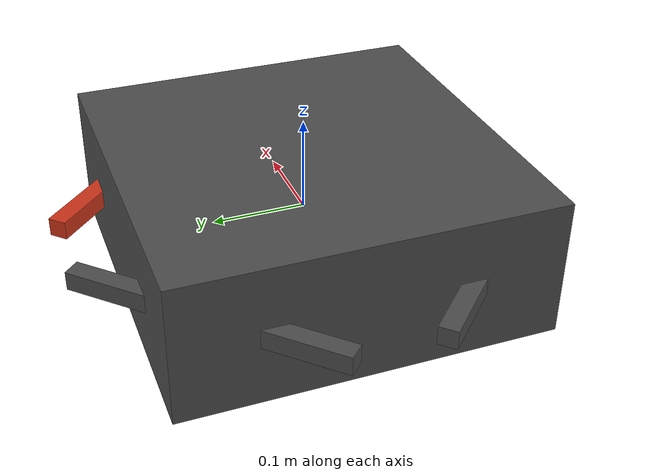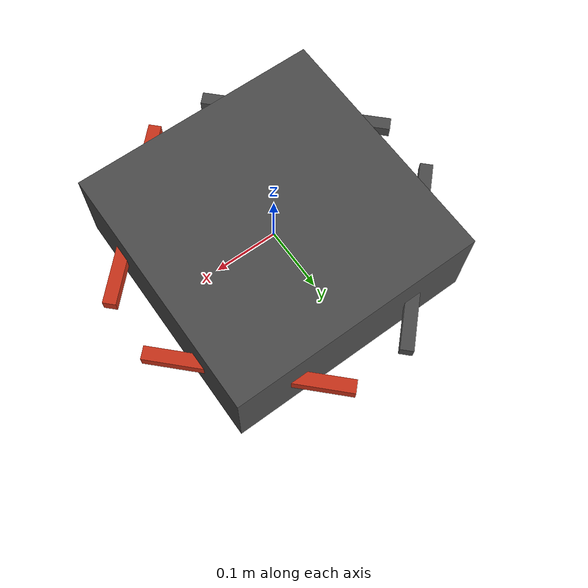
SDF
<?xml version="1.0" ?>
<sdf version="1.6">
  <model name="stereo_drone">
    <static>false</static>

    <!-- ===== Body ===== -->
    <link name="base_link">
      <inertial>
        <mass>1.5</mass>
        <inertia>
          <ixx>0.02</ixx><iyy>0.02</iyy><izz>0.04</izz>
        </inertia>
      </inertial>
      <collision name="body_col">
        <geometry><box><size>0.4 0.4 0.15</size></box></geometry>
      </collision>
      <visual name="body_vis">
        <geometry><box><size>0.4 0.4 0.15</size></box></geometry>
        <material>
          <ambient>0.2 0.2 0.2 1</ambient>
          <diffuse>0.3 0.3 0.3 1</diffuse>
        </material>
      </visual>
      <!-- 4 arms -->
      <visual name="arm_fr">
        <pose>0.15 -0.15 0 0 0 0.785</pose>
        <geometry><box><size>0.3 0.02 0.02</size></box></geometry>
        <material><ambient>0.8 0.2 0.1 1</ambient></material>
      </visual>
      <visual name="arm_fl">
        <pose>0.15 0.15 0 0 0 -0.785</pose>
        <geometry><box><size>0.3 0.02 0.02</size></box></geometry>
        <material><ambient>0.8 0.2 0.1 1</ambient></material>
      </visual>
      <visual name="arm_br">
        <pose>-0.15 -0.15 0 0 0 -0.785</pose>
        <geometry><box><size>0.3 0.02 0.02</size></box></geometry>
        <material><ambient>0.3 0.3 0.3 1</ambient></material>
      </visual>
      <visual name="arm_bl">
        <pose>-0.15 0.15 0 0 0 0.785</pose>
        <geometry><box><size>0.3 0.02 0.02</size></box></geometry>
        <material><ambient>0.3 0.3 0.3 1</ambient></material>
      </visual>
    </link>

    <!-- ===== Left Camera ===== -->
    <link name="left_camera_link">
      <pose>0.1 0.045 -0.03 0 0 0</pose>
      <inertial>
        <mass>0.01</mass>
        <inertia>
          <ixx>1e-6</ixx><iyy>1e-6</iyy><izz>1e-6</izz>
        </inertia>
      </inertial>
      <visual name="cam_vis">
        <geometry><box><size>0.02 0.02 0.02</size></box></geometry>
        <material><ambient>0.1 0.1 0.8 1</ambient></material>
      </visual>
      <sensor name="left_camera" type="camera">
        <always_on>true</always_on>
        <update_rate>10</update_rate>
        <camera>
          <horizontal_fov>1.5708</horizontal_fov>
          <image>
            <width>384</width>
            <height>384</height>
            <format>R8G8B8</format>
          </image>
          <clip><near>0.1</near><far>50</far></clip>
        </camera>
        <plugin name="left_camera_plugin" filename="libgazebo_ros_camera.so">
          <cameraName>stereo/left</cameraName>
          <imageTopicName>image_raw</imageTopicName>
          <cameraInfoTopicName>camera_info</cameraInfoTopicName>
          <frameName>left_camera_link</frameName>
          <hackBaseline>0.0</hackBaseline>
          <distortionK1>0.0</distortionK1>
          <distortionK2>0.0</distortionK2>
          <distortionT1>0.0</distortionT1>
          <distortionT2>0.0</distortionT2>
          <Cx>192.0</Cx>
          <Cy>192.0</Cy>
          <focalLength>368.92</focalLength>
        </plugin>
      </sensor>
    </link>
    <joint name="left_camera_joint" type="fixed">
      <parent>base_link</parent>
      <child>left_camera_link</child>
    </joint>

    <!-- ===== Right Camera (baseline 0.09 m to the right) ===== -->
    <link name="right_camera_link">
      <pose>0.1 -0.045 -0.03 0 0 0</pose>
      <inertial>
        <mass>0.01</mass>
        <inertia>
          <ixx>1e-6</ixx><iyy>1e-6</iyy><izz>1e-6</izz>
        </inertia>
      </inertial>
      <visual name="cam_vis">
        <geometry><box><size>0.02 0.02 0.02</size></box></geometry>
        <material><ambient>0.8 0.1 0.1 1</ambient></material>
      </visual>
      <sensor name="right_camera" type="camera">
        <always_on>true</always_on>
        <update_rate>10</update_rate>
        <camera>
          <horizontal_fov>1.5708</horizontal_fov>
          <image>
            <width>384</width>
            <height>384</height>
            <format>R8G8B8</format>
          </image>
          <clip><near>0.1</near><far>50</far></clip>
        </camera>
        <plugin name="right_camera_plugin" filename="libgazebo_ros_camera.so">
          <cameraName>stereo/right</cameraName>
          <imageTopicName>image_raw</imageTopicName>
          <cameraInfoTopicName>camera_info</cameraInfoTopicName>
          <frameName>right_camera_link</frameName>
          <hackBaseline>0.09</hackBaseline>
          <distortionK1>0.0</distortionK1>
          <distortionK2>0.0</distortionK2>
          <distortionT1>0.0</distortionT1>
          <distortionT2>0.0</distortionT2>
          <Cx>192.0</Cx>
          <Cy>192.0</Cy>
          <focalLength>368.92</focalLength>
        </plugin>
      </sensor>
    </link>
    <joint name="right_camera_joint" type="fixed">
      <parent>base_link</parent>
      <child>right_camera_link</child>
    </joint>

    <!-- ===== Ground-Truth Depth Camera (for comparison experiments) ===== -->
    <link name="depth_camera_link">
      <pose>0.1 0.045 -0.03 0 0 0</pose>
      <inertial>
        <mass>0.001</mass>
        <inertia>
          <ixx>1e-7</ixx><iyy>1e-7</iyy><izz>1e-7</izz>
        </inertia>
      </inertial>
      <sensor name="depth_camera" type="depth">
        <always_on>true</always_on>
        <update_rate>10</update_rate>
        <camera>
          <horizontal_fov>1.5708</horizontal_fov>
          <image>
            <width>384</width>
            <height>384</height>
            <format>R8G8B8</format>
          </image>
          <clip><near>0.1</near><far>50</far></clip>
        </camera>
        <plugin name="depth_camera_plugin" filename="libgazebo_ros_depth_camera.so">
          <cameraName>depth_camera</cameraName>
          <imageTopicName>color/image_raw</imageTopicName>
          <depthImageTopicName>depth/image_raw</depthImageTopicName>
          <pointCloudTopicName>depth/points</pointCloudTopicName>
          <cameraInfoTopicName>depth/camera_info</cameraInfoTopicName>
          <frameName>depth_camera_link</frameName>
          <pointCloudCutoff>0.1</pointCloudCutoff>
          <pointCloudCutoffMax>50.0</pointCloudCutoffMax>
          <Cx>192.0</Cx>
          <Cy>192.0</Cy>
          <focalLength>368.92</focalLength>
        </plugin>
      </sensor>
    </link>
    <joint name="depth_camera_joint" type="fixed">
      <parent>base_link</parent>
      <child>depth_camera_link</child>
    </joint>

  </model>
</sdf>
